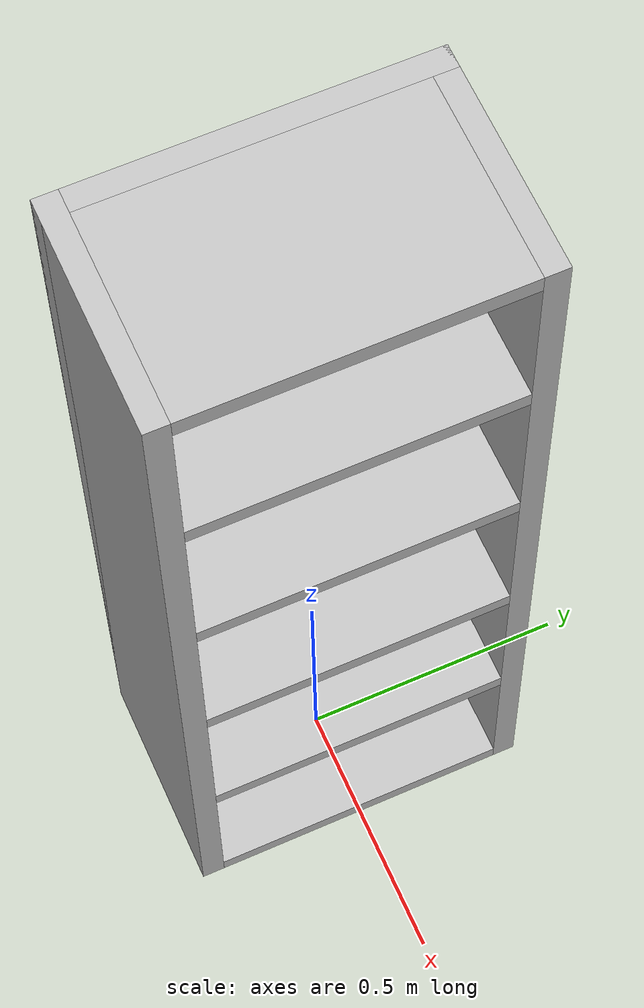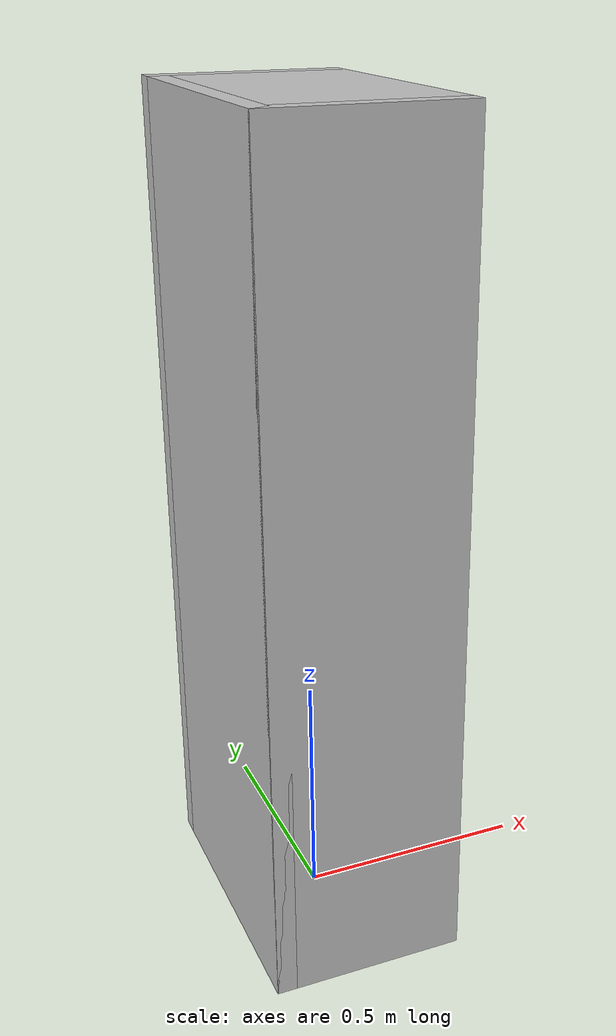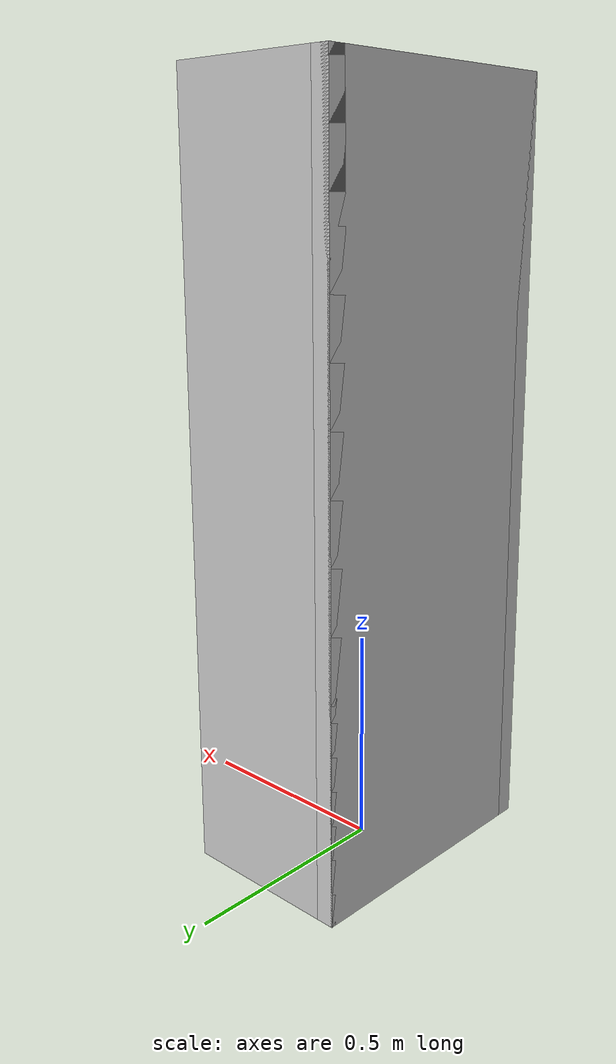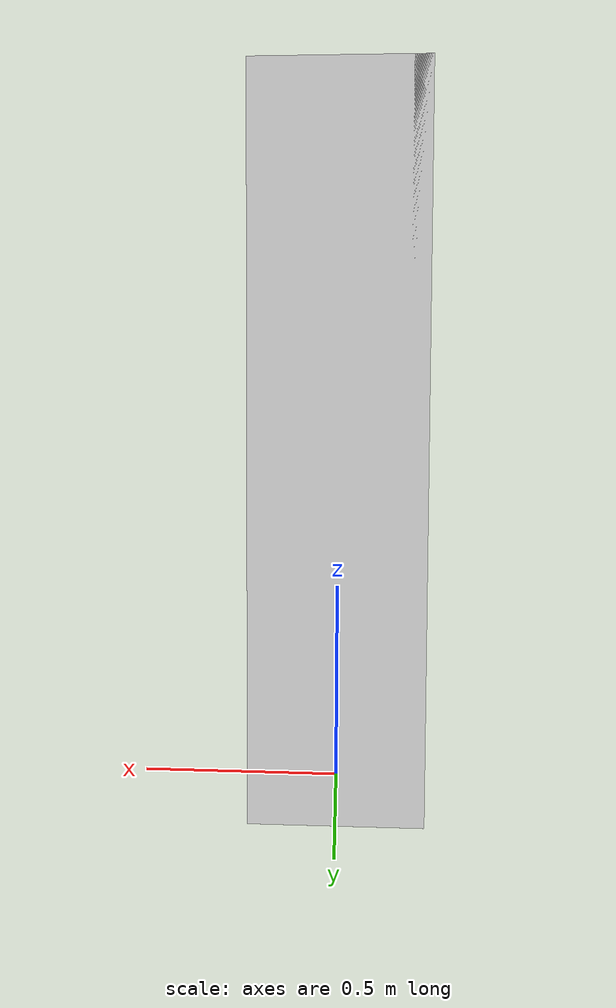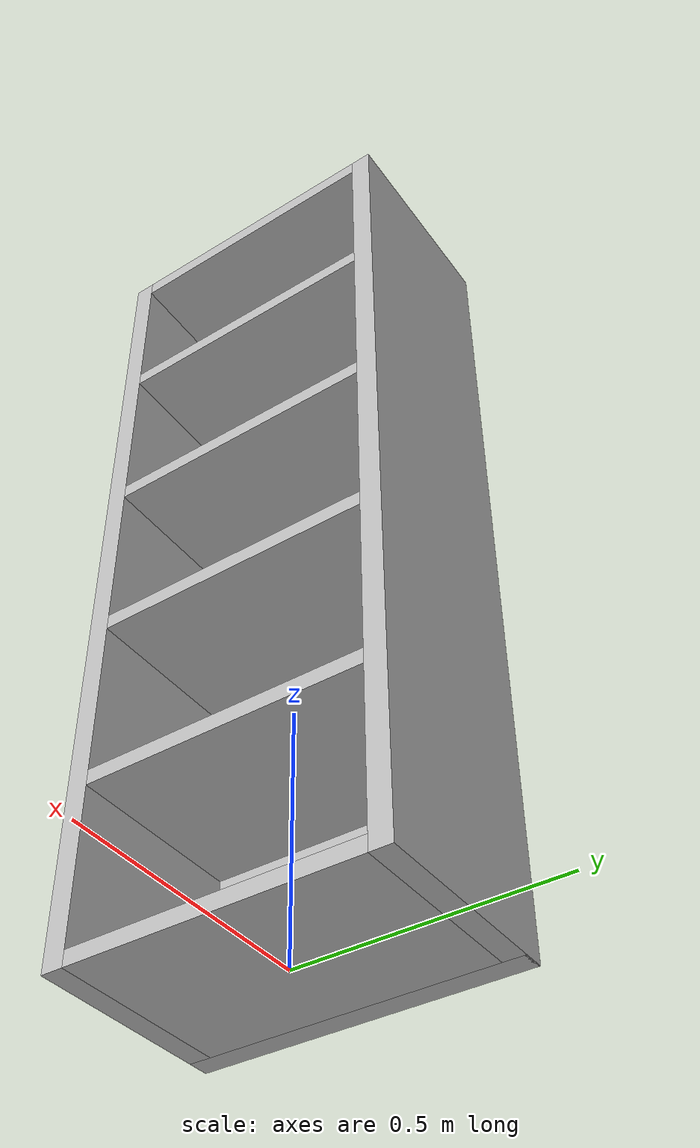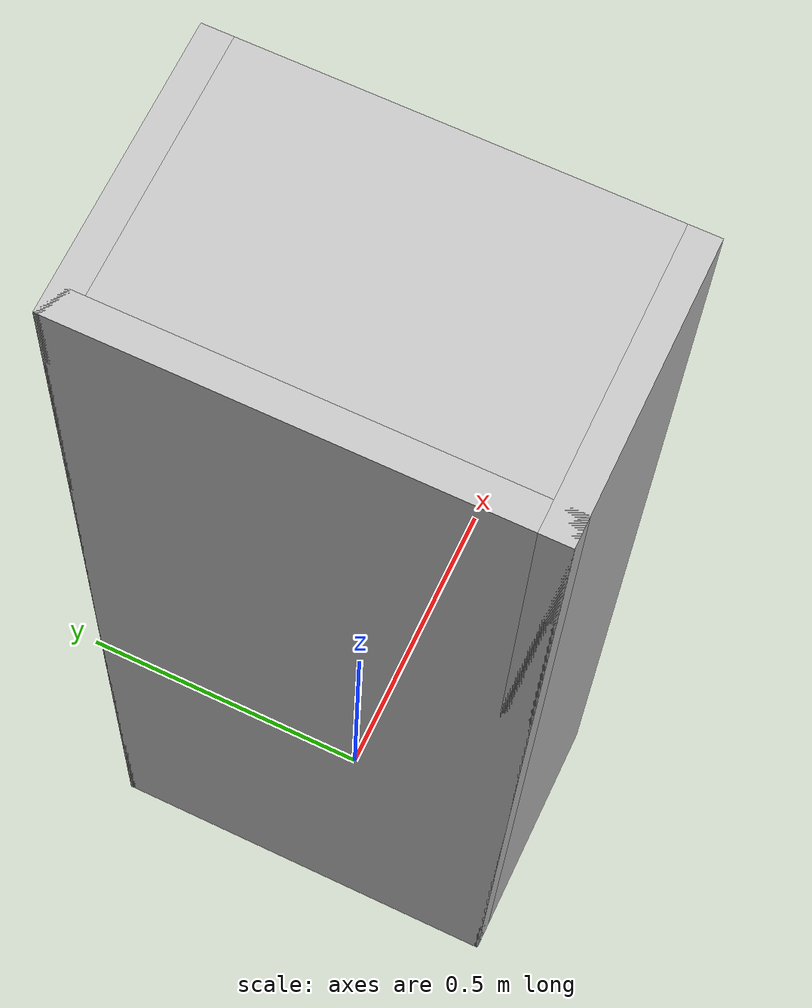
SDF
<?xml version="1.0" ?>
<sdf version="1.6">
  <model name="robotics_testlabs/plastic_cabinet">
    <link name="1">
      <collision name="1">
        <geometry>
          <box>
            <size>0.414 0.043 1.761</size>
          </box>
        </geometry>
        <name>1</name>
      </collision>
      <visual name="1">
        <geometry>
          <box>
            <size>0.414 0.043 1.761</size>
          </box>
        </geometry>
        <material>
          <ambient>0.75 0.75 0.75 1</ambient>
        </material>
        <name>1</name>
      </visual>
      <pose>0 -0.3035 0.8805 0 0 0</pose>
      <name>1</name>
    </link>
    <link name="2">
      <collision name="2">
        <geometry>
          <box>
            <size>0.414 0.043 1.761</size>
          </box>
        </geometry>
        <name>2</name>
      </collision>
      <visual name="2">
        <geometry>
          <box>
            <size>0.414 0.043 1.761</size>
          </box>
        </geometry>
        <material>
          <ambient>0.75 0.75 0.75 1</ambient>
        </material>
        <name>2</name>
      </visual>
      <pose>0 0.3035 0.8805 0 0 0</pose>
      <name>2</name>
    </link>
    <link name="3">
      <collision name="3">
        <geometry>
          <box>
            <size>0.043 0.65 1.761</size>
          </box>
        </geometry>
        <name>3</name>
      </collision>
      <visual name="3">
        <geometry>
          <box>
            <size>0.043 0.65 1.761</size>
          </box>
        </geometry>
        <material>
          <ambient>0.75 0.75 0.75 1</ambient>
        </material>
        <name>3</name>
      </visual>
      <pose>-0.1855 0 0.8805 0 0 0</pose>
      <name>3</name>
    </link>
    <link name="4">
      <collision name="4">
        <geometry>
          <box>
            <size>0.371 0.564 0.034</size>
          </box>
        </geometry>
        <name>4</name>
      </collision>
      <visual name="4">
        <geometry>
          <box>
            <size>0.371 0.564 0.034</size>
          </box>
        </geometry>
        <material>
          <ambient>0.75 0.75 0.75 1</ambient>
        </material>
        <name>4</name>
      </visual>
      <pose>0.0215 0 1.744 0 0 0</pose>
      <name>4</name>
    </link>
    <link name="5">
      <collision name="5">
        <geometry>
          <box>
            <size>0.371 0.564 0.031</size>
          </box>
        </geometry>
        <name>5</name>
      </collision>
      <visual name="5">
        <geometry>
          <box>
            <size>0.371 0.564 0.031</size>
          </box>
        </geometry>
        <material>
          <ambient>0.75 0.75 0.75 1</ambient>
        </material>
        <name>5</name>
      </visual>
      <pose>0.0215 0 0.0155 0 0 0</pose>
      <name>5</name>
    </link>
    <link name="6">
      <collision name="6">
        <geometry>
          <box>
            <size>0.371 0.564 0.031</size>
          </box>
        </geometry>
        <name>6</name>
      </collision>
      <visual name="6">
        <geometry>
          <box>
            <size>0.371 0.564 0.031</size>
          </box>
        </geometry>
        <material>
          <ambient>0.75 0.75 0.75 1</ambient>
        </material>
        <name>6</name>
      </visual>
      <pose>0.0215 0 0.3555 0 0 0</pose>
      <name>6</name>
    </link>
    <link name="7">
      <collision name="7">
        <geometry>
          <box>
            <size>0.371 0.564 0.031</size>
          </box>
        </geometry>
        <name>7</name>
      </collision>
      <visual name="7">
        <geometry>
          <box>
            <size>0.371 0.564 0.031</size>
          </box>
        </geometry>
        <material>
          <ambient>0.75 0.75 0.75 1</ambient>
        </material>
        <name>7</name>
      </visual>
      <pose>0.0215 0 0.7065 0 0 0</pose>
      <name>7</name>
    </link>
    <link name="8">
      <collision name="8">
        <geometry>
          <box>
            <size>0.371 0.564 0.031</size>
          </box>
        </geometry>
        <name>8</name>
      </collision>
      <visual name="8">
        <geometry>
          <box>
            <size>0.371 0.564 0.031</size>
          </box>
        </geometry>
        <material>
          <ambient>0.75 0.75 0.75 1</ambient>
        </material>
        <name>8</name>
      </visual>
      <pose>0.0215 0 1.0575 0 0 0</pose>
      <name>8</name>
    </link>
    <link name="9">
      <collision name="9">
        <geometry>
          <box>
            <size>0.371 0.564 0.031</size>
          </box>
        </geometry>
        <name>9</name>
      </collision>
      <visual name="9">
        <geometry>
          <box>
            <size>0.371 0.564 0.031</size>
          </box>
        </geometry>
        <material>
          <ambient>0.75 0.75 0.75 1</ambient>
        </material>
        <name>9</name>
      </visual>
      <pose>0.0215 0 1.4135 0 0 0</pose>
      <name>9</name>
    </link>
    <link name="in_front_of">
      <virtual_area name="in_front_of">
        <geometry>
          <box>
            <size>0.2 0.45 0.01</size>
          </box>
        </geometry>
        <pose>0.707 0.0 0.005 0 0 0</pose>
        <name>in_front_of</name>
      </virtual_area>
      <name>in_front_of</name>
    </link>
    <link name="shelf1">
      <virtual_area name="shelf1">
        <geometry>
          <box>
            <size>0.311 0.504 0.27</size>
          </box>
        </geometry>
        <pose>0.0215 0.0 0.186 0 0 0</pose>
        <name>shelf1</name>
      </virtual_area>
      <name>shelf1</name>
    </link>
    <link name="shelf2">
      <virtual_area name="shelf2">
        <geometry>
          <box>
            <size>0.311 0.504 0.27</size>
          </box>
        </geometry>
        <pose>0.0215 0.0 0.526 0 0 0</pose>
        <name>shelf2</name>
      </virtual_area>
      <name>shelf2</name>
    </link>
    <link name="shelf3">
      <virtual_area name="shelf3">
        <geometry>
          <box>
            <size>0.311 0.504 0.27</size>
          </box>
        </geometry>
        <pose>0.0215 0.0 0.877 0 0 0</pose>
        <name>shelf3</name>
      </virtual_area>
      <name>shelf3</name>
    </link>
    <link name="on_top_of">
      <virtual_area name="on_top_of">
        <geometry>
          <box>
            <size>0.311 0.504 0.27</size>
          </box>
        </geometry>
        <pose>0.0215 0.0 0.877 0 0 0</pose>
        <name>on_top_of</name>
      </virtual_area>
      <name>on_top_of</name>
    </link>
    <link name="shelf4">
      <virtual_area name="shelf4">
        <geometry>
          <box>
            <size>0.311 0.504 0.27</size>
          </box>
        </geometry>
        <pose>0.0215 0.0 1.228 0 0 0</pose>
        <name>shelf4</name>
      </virtual_area>
      <name>shelf4</name>
    </link>
    <link name="shelf5">
      <virtual_area name="shelf5">
        <geometry>
          <box>
            <size>0.311 0.504 0.27</size>
          </box>
        </geometry>
        <pose>0.0215 0.0 1.584 0 0 0</pose>
        <name>shelf5</name>
      </virtual_area>
      <name>shelf5</name>
    </link>
    <static>true</static>
    <name>robotics_testlabs/plastic_cabinet</name>
  </model>
</sdf>
